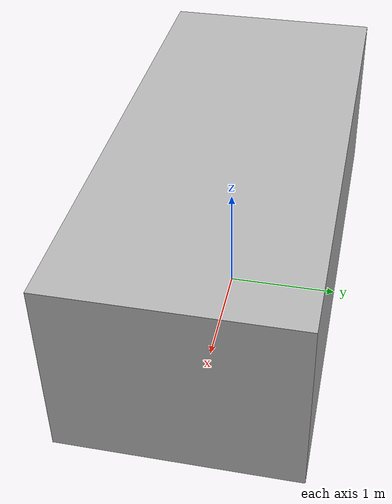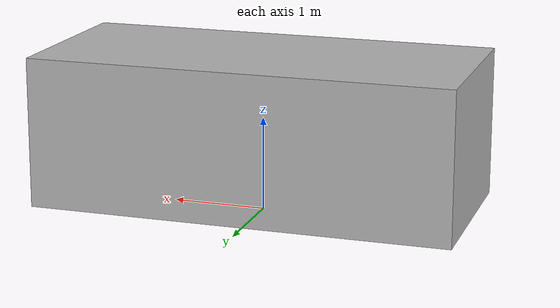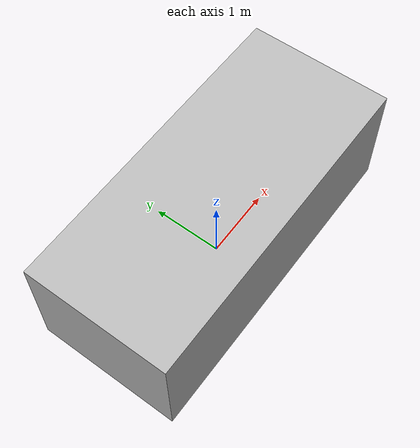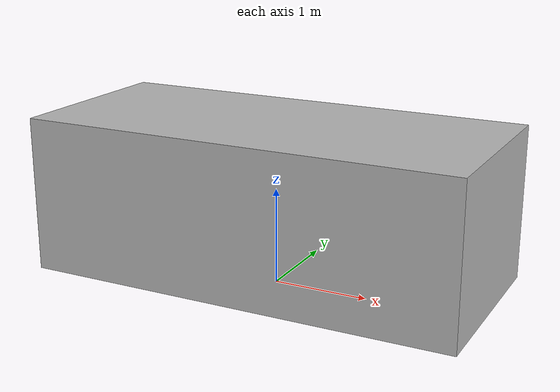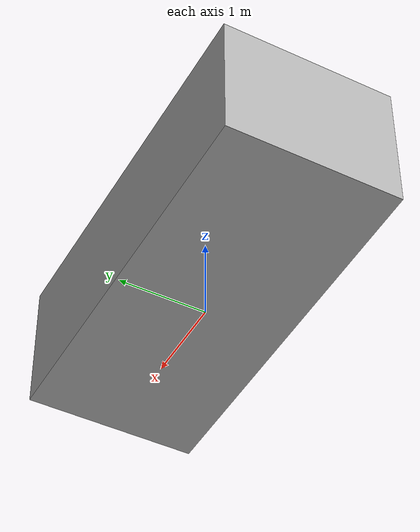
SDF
<?xml version="1.0"?>
<sdf version="1.8">
  <model name="GhostBox">
    <link name="body">
      <pose>0 0 0.9 0 0 0</pose>
      <gravity>false</gravity>
      <inertial>
        <mass>1500</mass>
        <inertia>
          <ixx>500</ixx><iyy>1500</iyy><izz>1500</izz>
          <ixy>0</ixy><ixz>0</ixz><iyz>0</iyz>
        </inertia>
      </inertial>
      <visual name="visual">
        <geometry><box><size>4.5 2.0 1.6</size></box></geometry>
      </visual>
    </link>
  </model>
</sdf>
